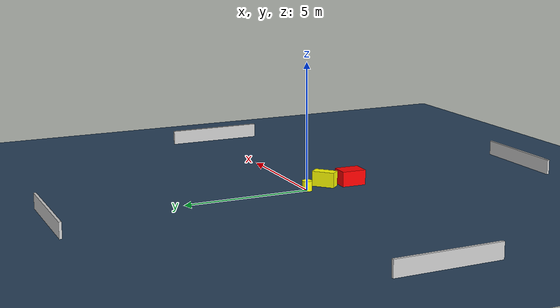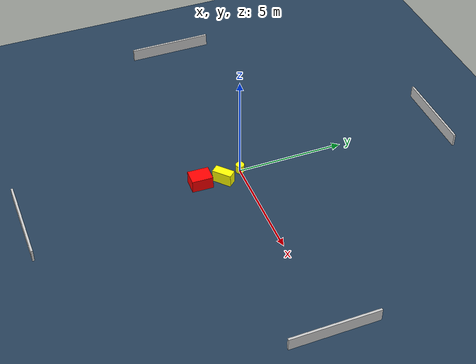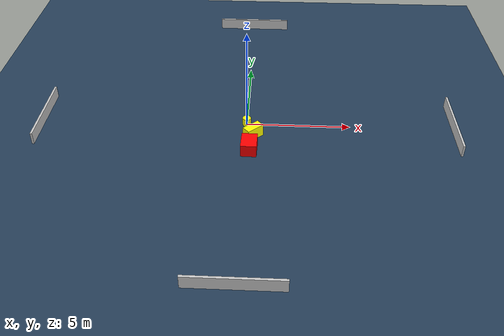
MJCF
<?xml version="1.0" ?>
<mujoco model="generated_environment">
  <option timestep="0.01" integrator="RK4" cone="elliptic"/>
  <default>
    <geom density="1"/>
  </default>
  <asset>
    <texture builtin="gradient" height="3072" name="skybox" rgb1="0.3 0.5 0.7" rgb2="0 0 0" type="skybox" width="512"/>
    <texture builtin="checker" height="300" name="groundplane" rgb1="0.2 0.3 0.4" rgb2="0.1 0.2 0.3" type="2d" width="300"/>
    <material name="groundplane" reflectance="0.2" texrepeat="5 5" texture="groundplane"/>
  </asset>
  <worldbody>
    <light dir="0 0 -1" directional="true" pos="0 0 1.5"/>
    <geom condim="3" friction="0.5 0.005 0.001" material="groundplane" name="floor" pos="0 0 0" size="0 0 0.05" type="plane"/>
    <body name="walls">
      <geom name="wall_1" condim="4" pos="-10.0 0.0 0.3" rgba="0.800000011920929 0.800000011920929 0.800000011920929 1.0" size="0.05 2.0 0.3" type="box"/>
      <geom name="wall_2" condim="4" pos="10.0 0.0 0.3" rgba="0.800000011920929 0.800000011920929 0.800000011920929 1.0" size="0.05 2.0 0.3" type="box"/>
      <geom name="wall_3" condim="4" pos="0.0 -10.0 0.3" rgba="0.800000011920929 0.800000011920929 0.800000011920929 1.0" size="2.0 0.05 0.3" type="box"/>
      <geom name="wall_4" condim="4" pos="0.0 10.0 0.3" rgba="0.800000011920929 0.800000011920929 0.800000011920929 1.0" size="2.0 0.05 0.3" type="box"/>
    </body>
    <body name="robot">
      <joint name="joint_x" type="slide" pos="0 0 0" axis="1 0 0"/>
      <joint name="joint_y" type="slide" pos="0 0 0" axis="0 1 0"/>
      <geom name="robot" type="cylinder" pos="0.0 0.0 0.2" size="0.2 0.2 0.0" mass="5.0" friction="1.0 0.005 0.0001" condim="4" rgba="1.0 1.0 0.0 1.0"/>
    </body>
    <body name="obstacle_1_movable">
      <geom name="obstacle_1_movable" condim="4" pos="0.34052725230881686 -0.9317576795539608 0.3" euler="0 0 222.14079090207488" friction="0.0 0.005 0.001" rgba="1.0 1.0 0.0 1.0" size="0.45385967370994984 0.21484523368389397 0.3" type="box" mass="0.1"/>
      <joint type="free"/>
    </body>
    <body name="obstacle_2_static">
      <geom name="obstacle_2_static" condim="4" pos="0.19142843624386557 -1.9855950757451197 0.3" euler="0 0 178.32246499167832" friction="0.0 0.005 0.001" rgba="1.0 0.0 0.0 1.0" size="0.3720728042729661 0.4880008110527341 0.3" type="box"/>
    </body>
  </worldbody>
  <actuator>
    <motor name="actuator_x" joint="joint_x" gear="1" ctrlrange="-1 1"/>
    <motor name="actuator_y" joint="joint_y" gear="1" ctrlrange="-1 1"/>
  </actuator>
</mujoco>
